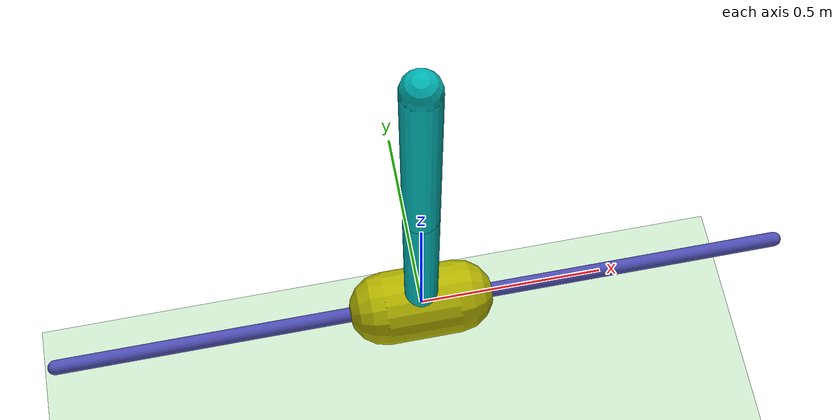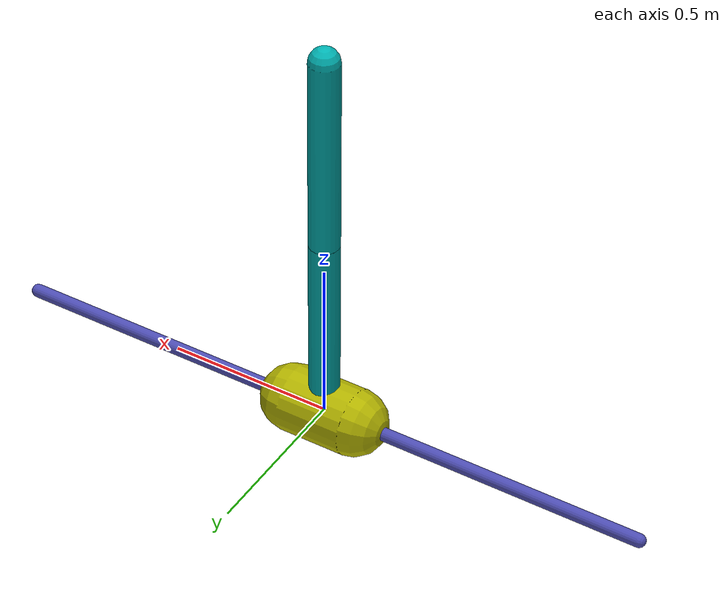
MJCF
<mujoco model='cartpole'>
    <compiler inertiafromgeom='true'
              coordinate='local'/>

    <custom>
        <numeric name="frame_skip" data="2" />
    </custom>

    <default>
        <joint damping='0.05' />
        <geom contype='0'
              friction='1 0.1 0.1'
              rgba='0.7 0.7 0 1' />
    </default>

    <option timestep='0.01'
            gravity='1e-5 0 -9.81'
            integrator="RK4"
    />

    <size nstack='3000'/>

    <worldbody>
        <geom name='floor'
              pos='0 0 -3.0'
              size='40 40 40'
              type='plane'
              rgba='0.8 0.9 0.8 1' />
        <geom name='rail'
              type='capsule'
              pos='0 0 0'
              quat='0.707 0 0.707 0'
              size='0.02 1'
              rgba='0.3 0.3 0.7 1' />
        <body name='cart' pos='0 0 0'>
            <joint name='slider'
                   type='slide'
                   limited='true'
                   pos='0 0 0'
                   axis='1 0 0'
                   range='-10 10'
                   margin='0.01'/>
            <geom name='cart'
                  type='capsule'
                  pos='0 0 0'
                  quat='0.707 0 0.707 0'
                  size='0.1 0.1' />
            <body name='pole' pos='0 0 0'>
                <joint name='hinge'
                       type='hinge'
                       pos='0 0 0'
                       axis='0 1 0'/>
                <geom name='cpole'
                      type='capsule'
                      fromto='0 0 0 0 0 0.6'
                      size='0.045 0.3'
                      rgba='0 0.7 0.7 1' />
                <body name='pole2' pos='0 0 0.6'>
                    <joint name='hinge2'
                           type='hinge'
                           pos='0 0 0'
                           axis='0 1 0'/>
                    <geom name='cpole2'
                          type='capsule'
                          fromto='0 0 0 0 0 0.6'
                          size='0.045 0.3'
                          rgba='0 0.7 0.7 1' />
                    <site name='tip'
                          size='0.01 0.01'
                          pos='0 0 .6'/>
                </body>
            </body>
        </body>
    </worldbody>

    <actuator>
        <motor name='slide'
               joint='slider'
               gear='500'
               ctrlrange='-1 1'
               ctrllimited='true'/>
    </actuator>
</mujoco>
